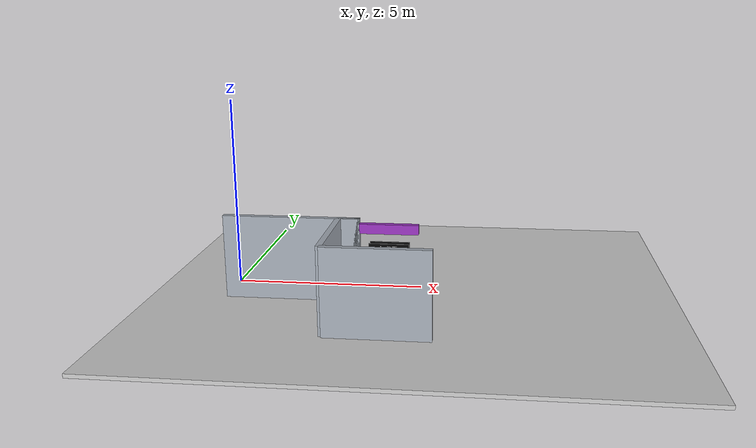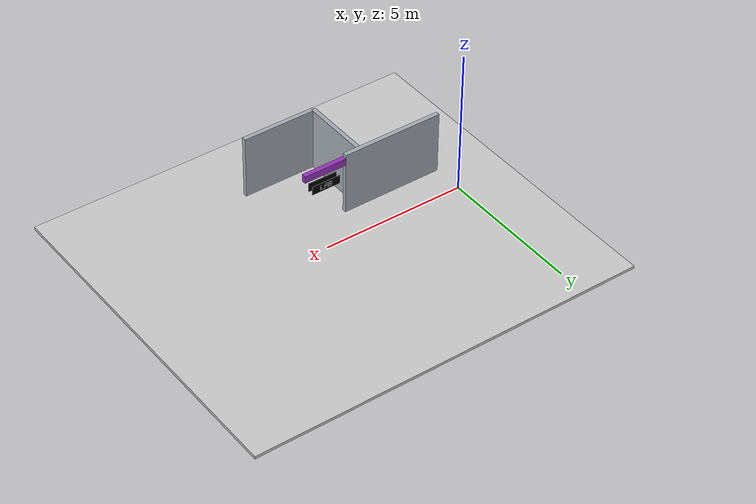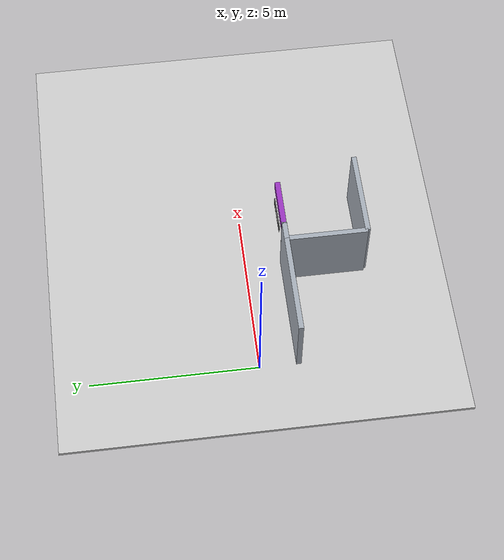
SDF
<sdf version="1.9">
 <world name="default">
  <model name="ground_plane">
   <static>true</static>
   <pose>4.85 0 -0.05 0 0 0</pose>
   <link name="body">
    <collision name="collision"><geometry><box><size>13.7 12 0.1</size></box></geometry></collision>
    <visual name="visual">
     <geometry><box><size>13.7 12 0.1</size></box></geometry>
     <material><ambient>0.8 0.8 0.8 1</ambient><diffuse>0.8 0.8 0.8 1</diffuse></material>
    </visual>
   </link>
  </model>
  <model name="hall_-1_1">
   <static>true</static>
   <pose>1.775 -1.15 1.1 0 0 0</pose>
   <link name="body">
    <collision name="collision"><geometry><box><size>3.55 0.15 2.2</size></box></geometry></collision>
    <visual name="visual">
     <geometry><box><size>3.55 0.15 2.2</size></box></geometry>
     <material><ambient>0.65 0.68 0.72 1</ambient><diffuse>0.65 0.68 0.72 1</diffuse></material>
    </visual>
   </link>
  </model>
  <model name="room_-1_1_-1">
   <static>true</static>
   <pose>3.0 -2.3499999999999996 1.1 0 0 0</pose>
   <link name="body">
    <collision name="collision"><geometry><box><size>0.15 2.4 2.2</size></box></geometry></collision>
    <visual name="visual">
     <geometry><box><size>0.15 2.4 2.2</size></box></geometry>
     <material><ambient>0.65 0.68 0.72 1</ambient><diffuse>0.65 0.68 0.72 1</diffuse></material>
    </visual>
   </link>
  </model>
  <model name="room_end_-1_1">
   <static>true</static>
   <pose>4.3 -3.55 1.1 0 0 0</pose>
   <link name="body">
    <collision name="collision"><geometry><box><size>2.6 0.15 2.2</size></box></geometry></collision>
    <visual name="visual">
     <geometry><box><size>2.6 0.15 2.2</size></box></geometry>
     <material><ambient>0.65 0.68 0.72 1</ambient><diffuse>0.65 0.68 0.72 1</diffuse></material>
    </visual>
   </link>
  </model>
  <model name="jamb_-1_1_-1">
   <static>true</static>
   <pose>3.275 -1.15 1.1 0 0 0</pose>
   <link name="body">
    <collision name="collision"><geometry><box><size>0.55 0.15 2.2</size></box></geometry></collision>
    <visual name="visual">
     <geometry><box><size>0.55 0.15 2.2</size></box></geometry>
     <material><ambient>0.65 0.68 0.72 1</ambient><diffuse>0.65 0.68 0.72 1</diffuse></material>
    </visual>
   </link>
  </model>
  <model name="r3geo_base_r006_right_1_lintel">
   <static>true</static>
   <pose>4.3 -1.15 1.95 0 0 0</pose>
   <link name="body">
    <collision name="collision"><geometry><box><size>1.5 0.16 0.25</size></box></geometry></collision>
    <visual name="visual">
     <geometry><box><size>1.5 0.16 0.25</size></box></geometry>
     <material><ambient>0.6 0.2 0.75 1</ambient><diffuse>0.6 0.2 0.75 1</diffuse></material>
    </visual>
   </link>
  </model>
  <model name="readable_r3geo_base_r006_right_1_entrance_corridor">
   <static>true</static>
   <pose>4.3 -1.05 1.43 0 0 3.14159265359</pose>
   <link name="lettering">
    <visual name="backboard">
     <geometry><box><size>1.02 0.018 0.3</size></box></geometry>
     <material>
      <ambient>.015 .015 .015 1</ambient>
      <diffuse>.015 .015 .015 1</diffuse>
      <emissive>.015 .015 .015 1</emissive>
     </material>
     <cast_shadows>false</cast_shadows>
    </visual>
    <visual name="letter_0_0_0">
     <pose>-0.208 -0.014 0.078 0 0 0</pose>
     <geometry><box><size>0.024439999999999996 0.008 0.024439999999999996</size></box></geometry>
     <material>
      <ambient>.96 .96 .96 1</ambient>
      <diffuse>.96 .96 .96 1</diffuse>
      <emissive>.96 .96 .96 1</emissive>
     </material>
     <cast_shadows>false</cast_shadows>
    </visual>
    <visual name="letter_0_1_0">
     <pose>-0.208 -0.014 0.052 0 0 0</pose>
     <geometry><box><size>0.024439999999999996 0.008 0.024439999999999996</size></box></geometry>
     <material>
      <ambient>.96 .96 .96 1</ambient>
      <diffuse>.96 .96 .96 1</diffuse>
      <emissive>.96 .96 .96 1</emissive>
     </material>
     <cast_shadows>false</cast_shadows>
    </visual>
    <visual name="letter_0_2_0">
     <pose>-0.208 -0.014 0.026 0 0 0</pose>
     <geometry><box><size>0.024439999999999996 0.008 0.024439999999999996</size></box></geometry>
     <material>
      <ambient>.96 .96 .96 1</ambient>
      <diffuse>.96 .96 .96 1</diffuse>
      <emissive>.96 .96 .96 1</emissive>
     </material>
     <cast_shadows>false</cast_shadows>
    </visual>
    <visual name="letter_0_3_0">
     <pose>-0.208 -0.014 0 0 0 0</pose>
     <geometry><box><size>0.024439999999999996 0.008 0.024439999999999996</size></box></geometry>
     <material>
      <ambient>.96 .96 .96 1</ambient>
      <diffuse>.96 .96 .96 1</diffuse>
      <emissive>.96 .96 .96 1</emissive>
     </material>
     <cast_shadows>false</cast_shadows>
    </visual>
    <visual name="letter_0_4_0">
     <pose>-0.208 -0.014 -0.026 0 0 0</pose>
     <geometry><box><size>0.024439999999999996 0.008 0.024439999999999996</size></box></geometry>
     <material>
      <ambient>.96 .96 .96 1</ambient>
      <diffuse>.96 .96 .96 1</diffuse>
      <emissive>.96 .96 .96 1</emissive>
     </material>
     <cast_shadows>false</cast_shadows>
    </visual>
    <visual name="letter_0_5_0">
     <pose>-0.208 -0.014 -0.052 0 0 0</pose>
     <geometry><box><size>0.024439999999999996 0.008 0.024439999999999996</size></box></geometry>
     <material>
      <ambient>.96 .96 .96 1</ambient>
      <diffuse>.96 .96 .96 1</diffuse>
      <emissive>.96 .96 .96 1</emissive>
     </material>
     <cast_shadows>false</cast_shadows>
    </visual>
    <visual name="letter_0_6_0">
     <pose>-0.208 -0.014 -0.078 0 0 0</pose>
     <geometry><box><size>0.024439999999999996 0.008 0.024439999999999996</size></box></geometry>
     <material>
      <ambient>.96 .96 .96 1</ambient>
      <diffuse>.96 .96 .96 1</diffuse>
      <emissive>.96 .96 .96 1</emissive>
     </material>
     <cast_shadows>false</cast_shadows>
    </visual>
    <visual name="letter_0_6_1">
     <pose>-0.182 -0.014 -0.078 0 0 0</pose>
     <geometry><box><size>0.024439999999999996 0.008 0.024439999999999996</size></box></geometry>
     <material>
      <ambient>.96 .96 .96 1</ambient>
      <diffuse>.96 .96 .96 1</diffuse>
      <emissive>.96 .96 .96 1</emissive>
     </material>
     <cast_shadows>false</cast_shadows>
    </visual>
    <visual name="letter_0_6_2">
     <pose>-0.156 -0.014 -0.078 0 0 0</pose>
     <geometry><box><size>0.024439999999999996 0.008 0.024439999999999996</size></box></geometry>
     <material>
      <ambient>.96 .96 .96 1</ambient>
      <diffuse>.96 .96 .96 1</diffuse>
      <emissive>.96 .96 .96 1</emissive>
     </material>
     <cast_shadows>false</cast_shadows>
    </visual>
    <visual name="letter_0_6_3">
     <pose>-0.13 -0.014 -0.078 0 0 0</pose>
     <geometry><box><size>0.024439999999999996 0.008 0.024439999999999996</size></box></geometry>
     <material>
      <ambient>.96 .96 .96 1</ambient>
      <diffuse>.96 .96 .96 1</diffuse>
      <emissive>.96 .96 .96 1</emissive>
     </material>
     <cast_shadows>false</cast_shadows>
    </visual>
    <visual name="letter_0_6_4">
     <pose>-0.104 -0.014 -0.078 0 0 0</pose>
     <geometry><box><size>0.024439999999999996 0.008 0.024439999999999996</size></box></geometry>
     <material>
      <ambient>.96 .96 .96 1</ambient>
      <diffuse>.96 .96 .96 1</diffuse>
      <emissive>.96 .96 .96 1</emissive>
     </material>
     <cast_shadows>false</cast_shadows>
    </visual>
    <visual name="letter_1_0_1">
     <pose>-0.026 -0.014 0.078 0 0 0</pose>
     <geometry><box><size>0.024439999999999996 0.008 0.024439999999999996</size></box></geometry>
     <material>
      <ambient>.96 .96 .96 1</ambient>
      <diffuse>.96 .96 .96 1</diffuse>
      <emissive>.96 .96 .96 1</emissive>
     </material>
     <cast_shadows>false</cast_shadows>
    </visual>
    <visual name="letter_1_0_2">
     <pose>0 -0.014 0.078 0 0 0</pose>
     <geometry><box><size>0.024439999999999996 0.008 0.024439999999999996</size></box></geometry>
     <material>
      <ambient>.96 .96 .96 1</ambient>
      <diffuse>.96 .96 .96 1</diffuse>
      <emissive>.96 .96 .96 1</emissive>
     </material>
     <cast_shadows>false</cast_shadows>
    </visual>
    <visual name="letter_1_0_3">
     <pose>0.026 -0.014 0.078 0 0 0</pose>
     <geometry><box><size>0.024439999999999996 0.008 0.024439999999999996</size></box></geometry>
     <material>
      <ambient>.96 .96 .96 1</ambient>
      <diffuse>.96 .96 .96 1</diffuse>
      <emissive>.96 .96 .96 1</emissive>
     </material>
     <cast_shadows>false</cast_shadows>
    </visual>
    <visual name="letter_1_1_0">
     <pose>-0.052 -0.014 0.052 0 0 0</pose>
     <geometry><box><size>0.024439999999999996 0.008 0.024439999999999996</size></box></geometry>
     <material>
      <ambient>.96 .96 .96 1</ambient>
      <diffuse>.96 .96 .96 1</diffuse>
      <emissive>.96 .96 .96 1</emissive>
     </material>
     <cast_shadows>false</cast_shadows>
    </visual>
    <visual name="letter_1_1_4">
     <pose>0.052 -0.014 0.052 0 0 0</pose>
     <geometry><box><size>0.024439999999999996 0.008 0.024439999999999996</size></box></geometry>
     <material>
      <ambient>.96 .96 .96 1</ambient>
      <diffuse>.96 .96 .96 1</diffuse>
      <emissive>.96 .96 .96 1</emissive>
     </material>
     <cast_shadows>false</cast_shadows>
    </visual>
    <visual name="letter_1_2_0">
     <pose>-0.052 -0.014 0.026 0 0 0</pose>
     <geometry><box><size>0.024439999999999996 0.008 0.024439999999999996</size></box></geometry>
     <material>
      <ambient>.96 .96 .96 1</ambient>
      <diffuse>.96 .96 .96 1</diffuse>
      <emissive>.96 .96 .96 1</emissive>
     </material>
     <cast_shadows>false</cast_shadows>
    </visual>
    <visual name="letter_1_2_4">
     <pose>0.052 -0.014 0.026 0 0 0</pose>
     <geometry><box><size>0.024439999999999996 0.008 0.024439999999999996</size></box></geometry>
     <material>
      <ambient>.96 .96 .96 1</ambient>
      <diffuse>.96 .96 .96 1</diffuse>
      <emissive>.96 .96 .96 1</emissive>
     </material>
     <cast_shadows>false</cast_shadows>
    </visual>
    <visual name="letter_1_3_0">
     <pose>-0.052 -0.014 0 0 0 0</pose>
     <geometry><box><size>0.024439999999999996 0.008 0.024439999999999996</size></box></geometry>
     <material>
      <ambient>.96 .96 .96 1</ambient>
      <diffuse>.96 .96 .96 1</diffuse>
      <emissive>.96 .96 .96 1</emissive>
     </material>
     <cast_shadows>false</cast_shadows>
    </visual>
    <visual name="letter_1_3_1">
     <pose>-0.026 -0.014 0 0 0 0</pose>
     <geometry><box><size>0.024439999999999996 0.008 0.024439999999999996</size></box></geometry>
     <material>
      <ambient>.96 .96 .96 1</ambient>
      <diffuse>.96 .96 .96 1</diffuse>
      <emissive>.96 .96 .96 1</emissive>
     </material>
     <cast_shadows>false</cast_shadows>
    </visual>
    <visual name="letter_1_3_2">
     <pose>0 -0.014 0 0 0 0</pose>
     <geometry><box><size>0.024439999999999996 0.008 0.024439999999999996</size></box></geometry>
     <material>
      <ambient>.96 .96 .96 1</ambient>
      <diffuse>.96 .96 .96 1</diffuse>
      <emissive>.96 .96 .96 1</emissive>
     </material>
     <cast_shadows>false</cast_shadows>
    </visual>
    <visual name="letter_1_3_3">
     <pose>0.026 -0.014 0 0 0 0</pose>
     <geometry><box><size>0.024439999999999996 0.008 0.024439999999999996</size></box></geometry>
     <material>
      <ambient>.96 .96 .96 1</ambient>
      <diffuse>.96 .96 .96 1</diffuse>
      <emissive>.96 .96 .96 1</emissive>
     </material>
     <cast_shadows>false</cast_shadows>
    </visual>
    <visual name="letter_1_3_4">
     <pose>0.052 -0.014 0 0 0 0</pose>
     <geometry><box><size>0.024439999999999996 0.008 0.024439999999999996</size></box></geometry>
     <material>
      <ambient>.96 .96 .96 1</ambient>
      <diffuse>.96 .96 .96 1</diffuse>
      <emissive>.96 .96 .96 1</emissive>
     </material>
     <cast_shadows>false</cast_shadows>
    </visual>
    <visual name="letter_1_4_0">
     <pose>-0.052 -0.014 -0.026 0 0 0</pose>
     <geometry><box><size>0.024439999999999996 0.008 0.024439999999999996</size></box></geometry>
     <material>
      <ambient>.96 .96 .96 1</ambient>
      <diffuse>.96 .96 .96 1</diffuse>
      <emissive>.96 .96 .96 1</emissive>
     </material>
     <cast_shadows>false</cast_shadows>
    </visual>
    <visual name="letter_1_4_4">
     <pose>0.052 -0.014 -0.026 0 0 0</pose>
     <geometry><box><size>0.024439999999999996 0.008 0.024439999999999996</size></box></geometry>
     <material>
      <ambient>.96 .96 .96 1</ambient>
      <diffuse>.96 .96 .96 1</diffuse>
      <emissive>.96 .96 .96 1</emissive>
     </material>
     <cast_shadows>false</cast_shadows>
    </visual>
    <visual name="letter_1_5_0">
     <pose>-0.052 -0.014 -0.052 0 0 0</pose>
     <geometry><box><size>0.024439999999999996 0.008 0.024439999999999996</size></box></geometry>
     <material>
      <ambient>.96 .96 .96 1</ambient>
      <diffuse>.96 .96 .96 1</diffuse>
      <emissive>.96 .96 .96 1</emissive>
     </material>
     <cast_shadows>false</cast_shadows>
    </visual>
    <visual name="letter_1_5_4">
     <pose>0.052 -0.014 -0.052 0 0 0</pose>
     <geometry><box><size>0.024439999999999996 0.008 0.024439999999999996</size></box></geometry>
     <material>
      <ambient>.96 .96 .96 1</ambient>
      <diffuse>.96 .96 .96 1</diffuse>
      <emissive>.96 .96 .96 1</emissive>
     </material>
     <cast_shadows>false</cast_shadows>
    </visual>
    <visual name="letter_1_6_0">
     <pose>-0.052 -0.014 -0.078 0 0 0</pose>
     <geometry><box><size>0.024439999999999996 0.008 0.024439999999999996</size></box></geometry>
     <material>
      <ambient>.96 .96 .96 1</ambient>
      <diffuse>.96 .96 .96 1</diffuse>
      <emissive>.96 .96 .96 1</emissive>
     </material>
     <cast_shadows>false</cast_shadows>
    </visual>
    <visual name="letter_1_6_4">
     <pose>0.052 -0.014 -0.078 0 0 0</pose>
     <geometry><box><size>0.024439999999999996 0.008 0.024439999999999996</size></box></geometry>
     <material>
      <ambient>.96 .96 .96 1</ambient>
      <diffuse>.96 .96 .96 1</diffuse>
      <emissive>.96 .96 .96 1</emissive>
     </material>
     <cast_shadows>false</cast_shadows>
    </visual>
    <visual name="letter_2_0_0">
     <pose>0.104 -0.014 0.078 0 0 0</pose>
     <geometry><box><size>0.024439999999999996 0.008 0.024439999999999996</size></box></geometry>
     <material>
      <ambient>.96 .96 .96 1</ambient>
      <diffuse>.96 .96 .96 1</diffuse>
      <emissive>.96 .96 .96 1</emissive>
     </material>
     <cast_shadows>false</cast_shadows>
    </visual>
    <visual name="letter_2_0_1">
     <pose>0.13 -0.014 0.078 0 0 0</pose>
     <geometry><box><size>0.024439999999999996 0.008 0.024439999999999996</size></box></geometry>
     <material>
      <ambient>.96 .96 .96 1</ambient>
      <diffuse>.96 .96 .96 1</diffuse>
      <emissive>.96 .96 .96 1</emissive>
     </material>
     <cast_shadows>false</cast_shadows>
    </visual>
    <visual name="letter_2_0_2">
     <pose>0.156 -0.014 0.078 0 0 0</pose>
     <geometry><box><size>0.024439999999999996 0.008 0.024439999999999996</size></box></geometry>
     <material>
      <ambient>.96 .96 .96 1</ambient>
      <diffuse>.96 .96 .96 1</diffuse>
      <emissive>.96 .96 .96 1</emissive>
     </material>
     <cast_shadows>false</cast_shadows>
    </visual>
    <visual name="letter_2_0_3">
     <pose>0.182 -0.014 0.078 0 0 0</pose>
     <geometry><box><size>0.024439999999999996 0.008 0.024439999999999996</size></box></geometry>
     <material>
      <ambient>.96 .96 .96 1</ambient>
      <diffuse>.96 .96 .96 1</diffuse>
      <emissive>.96 .96 .96 1</emissive>
     </material>
     <cast_shadows>false</cast_shadows>
    </visual>
    <visual name="letter_2_1_0">
     <pose>0.104 -0.014 0.052 0 0 0</pose>
     <geometry><box><size>0.024439999999999996 0.008 0.024439999999999996</size></box></geometry>
     <material>
      <ambient>.96 .96 .96 1</ambient>
      <diffuse>.96 .96 .96 1</diffuse>
      <emissive>.96 .96 .96 1</emissive>
     </material>
     <cast_shadows>false</cast_shadows>
    </visual>
    <visual name="letter_2_1_4">
     <pose>0.208 -0.014 0.052 0 0 0</pose>
     <geometry><box><size>0.024439999999999996 0.008 0.024439999999999996</size></box></geometry>
     <material>
      <ambient>.96 .96 .96 1</ambient>
      <diffuse>.96 .96 .96 1</diffuse>
      <emissive>.96 .96 .96 1</emissive>
     </material>
     <cast_shadows>false</cast_shadows>
    </visual>
    <visual name="letter_2_2_0">
     <pose>0.104 -0.014 0.026 0 0 0</pose>
     <geometry><box><size>0.024439999999999996 0.008 0.024439999999999996</size></box></geometry>
     <material>
      <ambient>.96 .96 .96 1</ambient>
      <diffuse>.96 .96 .96 1</diffuse>
      <emissive>.96 .96 .96 1</emissive>
     </material>
     <cast_shadows>false</cast_shadows>
    </visual>
    <visual name="letter_2_2_4">
     <pose>0.208 -0.014 0.026 0 0 0</pose>
     <geometry><box><size>0.024439999999999996 0.008 0.024439999999999996</size></box></geometry>
     <material>
      <ambient>.96 .96 .96 1</ambient>
      <diffuse>.96 .96 .96 1</diffuse>
      <emissive>.96 .96 .96 1</emissive>
     </material>
     <cast_shadows>false</cast_shadows>
    </visual>
    <visual name="letter_2_3_0">
     <pose>0.104 -0.014 0 0 0 0</pose>
     <geometry><box><size>0.024439999999999996 0.008 0.024439999999999996</size></box></geometry>
     <material>
      <ambient>.96 .96 .96 1</ambient>
      <diffuse>.96 .96 .96 1</diffuse>
      <emissive>.96 .96 .96 1</emissive>
     </material>
     <cast_shadows>false</cast_shadows>
    </visual>
    <visual name="letter_2_3_1">
     <pose>0.13 -0.014 0 0 0 0</pose>
     <geometry><box><size>0.024439999999999996 0.008 0.024439999999999996</size></box></geometry>
     <material>
      <ambient>.96 .96 .96 1</ambient>
      <diffuse>.96 .96 .96 1</diffuse>
      <emissive>.96 .96 .96 1</emissive>
     </material>
     <cast_shadows>false</cast_shadows>
    </visual>
    <visual name="letter_2_3_2">
     <pose>0.156 -0.014 0 0 0 0</pose>
     <geometry><box><size>0.024439999999999996 0.008 0.024439999999999996</size></box></geometry>
     <material>
      <ambient>.96 .96 .96 1</ambient>
      <diffuse>.96 .96 .96 1</diffuse>
      <emissive>.96 .96 .96 1</emissive>
     </material>
     <cast_shadows>false</cast_shadows>
    </visual>
    <visual name="letter_2_3_3">
     <pose>0.182 -0.014 0 0 0 0</pose>
     <geometry><box><size>0.024439999999999996 0.008 0.024439999999999996</size></box></geometry>
     <material>
      <ambient>.96 .96 .96 1</ambient>
      <diffuse>.96 .96 .96 1</diffuse>
      <emissive>.96 .96 .96 1</emissive>
     </material>
     <cast_shadows>false</cast_shadows>
    </visual>
    <visual name="letter_2_4_0">
     <pose>0.104 -0.014 -0.026 0 0 0</pose>
     <geometry><box><size>0.024439999999999996 0.008 0.024439999999999996</size></box></geometry>
     <material>
      <ambient>.96 .96 .96 1</ambient>
      <diffuse>.96 .96 .96 1</diffuse>
      <emissive>.96 .96 .96 1</emissive>
     </material>
     <cast_shadows>false</cast_shadows>
    </visual>
    <visual name="letter_2_4_4">
     <pose>0.208 -0.014 -0.026 0 0 0</pose>
     <geometry><box><size>0.024439999999999996 0.008 0.024439999999999996</size></box></geometry>
     <material>
      <ambient>.96 .96 .96 1</ambient>
      <diffuse>.96 .96 .96 1</diffuse>
      <emissive>.96 .96 .96 1</emissive>
     </material>
     <cast_shadows>false</cast_shadows>
    </visual>
    <visual name="letter_2_5_0">
     <pose>0.104 -0.014 -0.052 0 0 0</pose>
     <geometry><box><size>0.024439999999999996 0.008 0.024439999999999996</size></box></geometry>
     <material>
      <ambient>.96 .96 .96 1</ambient>
      <diffuse>.96 .96 .96 1</diffuse>
      <emissive>.96 .96 .96 1</emissive>
     </material>
     <cast_shadows>false</cast_shadows>
    </visual>
    <visual name="letter_2_5_4">
     <pose>0.208 -0.014 -0.052 0 0 0</pose>
     <geometry><box><size>0.024439999999999996 0.008 0.024439999999999996</size></box></geometry>
     <material>
      <ambient>.96 .96 .96 1</ambient>
      <diffuse>.96 .96 .96 1</diffuse>
      <emissive>.96 .96 .96 1</emissive>
     </material>
     <cast_shadows>false</cast_shadows>
    </visual>
    <visual name="letter_2_6_0">
     <pose>0.104 -0.014 -0.078 0 0 0</pose>
     <geometry><box><size>0.024439999999999996 0.008 0.024439999999999996</size></box></geometry>
     <material>
      <ambient>.96 .96 .96 1</ambient>
      <diffuse>.96 .96 .96 1</diffuse>
      <emissive>.96 .96 .96 1</emissive>
     </material>
     <cast_shadows>false</cast_shadows>
    </visual>
    <visual name="letter_2_6_1">
     <pose>0.13 -0.014 -0.078 0 0 0</pose>
     <geometry><box><size>0.024439999999999996 0.008 0.024439999999999996</size></box></geometry>
     <material>
      <ambient>.96 .96 .96 1</ambient>
      <diffuse>.96 .96 .96 1</diffuse>
      <emissive>.96 .96 .96 1</emissive>
     </material>
     <cast_shadows>false</cast_shadows>
    </visual>
    <visual name="letter_2_6_2">
     <pose>0.156 -0.014 -0.078 0 0 0</pose>
     <geometry><box><size>0.024439999999999996 0.008 0.024439999999999996</size></box></geometry>
     <material>
      <ambient>.96 .96 .96 1</ambient>
      <diffuse>.96 .96 .96 1</diffuse>
      <emissive>.96 .96 .96 1</emissive>
     </material>
     <cast_shadows>false</cast_shadows>
    </visual>
    <visual name="letter_2_6_3">
     <pose>0.182 -0.014 -0.078 0 0 0</pose>
     <geometry><box><size>0.024439999999999996 0.008 0.024439999999999996</size></box></geometry>
     <material>
      <ambient>.96 .96 .96 1</ambient>
      <diffuse>.96 .96 .96 1</diffuse>
      <emissive>.96 .96 .96 1</emissive>
     </material>
     <cast_shadows>false</cast_shadows>
    </visual>
   </link>
  </model>
  <model name="readable_r3geo_base_r006_right_1_entrance_room">
   <static>true</static>
   <pose>4.3 -1.25 1.43 0 0 0</pose>
   <link name="lettering">
    <visual name="backboard">
     <geometry><box><size>1.02 0.018 0.3</size></box></geometry>
     <material>
      <ambient>.015 .015 .015 1</ambient>
      <diffuse>.015 .015 .015 1</diffuse>
      <emissive>.015 .015 .015 1</emissive>
     </material>
     <cast_shadows>false</cast_shadows>
    </visual>
    <visual name="letter_0_0_0">
     <pose>-0.208 -0.014 0.078 0 0 0</pose>
     <geometry><box><size>0.024439999999999996 0.008 0.024439999999999996</size></box></geometry>
     <material>
      <ambient>.96 .96 .96 1</ambient>
      <diffuse>.96 .96 .96 1</diffuse>
      <emissive>.96 .96 .96 1</emissive>
     </material>
     <cast_shadows>false</cast_shadows>
    </visual>
    <visual name="letter_0_1_0">
     <pose>-0.208 -0.014 0.052 0 0 0</pose>
     <geometry><box><size>0.024439999999999996 0.008 0.024439999999999996</size></box></geometry>
     <material>
      <ambient>.96 .96 .96 1</ambient>
      <diffuse>.96 .96 .96 1</diffuse>
      <emissive>.96 .96 .96 1</emissive>
     </material>
     <cast_shadows>false</cast_shadows>
    </visual>
    <visual name="letter_0_2_0">
     <pose>-0.208 -0.014 0.026 0 0 0</pose>
     <geometry><box><size>0.024439999999999996 0.008 0.024439999999999996</size></box></geometry>
     <material>
      <ambient>.96 .96 .96 1</ambient>
      <diffuse>.96 .96 .96 1</diffuse>
      <emissive>.96 .96 .96 1</emissive>
     </material>
     <cast_shadows>false</cast_shadows>
    </visual>
    <visual name="letter_0_3_0">
     <pose>-0.208 -0.014 0 0 0 0</pose>
     <geometry><box><size>0.024439999999999996 0.008 0.024439999999999996</size></box></geometry>
     <material>
      <ambient>.96 .96 .96 1</ambient>
      <diffuse>.96 .96 .96 1</diffuse>
      <emissive>.96 .96 .96 1</emissive>
     </material>
     <cast_shadows>false</cast_shadows>
    </visual>
    <visual name="letter_0_4_0">
     <pose>-0.208 -0.014 -0.026 0 0 0</pose>
     <geometry><box><size>0.024439999999999996 0.008 0.024439999999999996</size></box></geometry>
     <material>
      <ambient>.96 .96 .96 1</ambient>
      <diffuse>.96 .96 .96 1</diffuse>
      <emissive>.96 .96 .96 1</emissive>
     </material>
     <cast_shadows>false</cast_shadows>
    </visual>
    <visual name="letter_0_5_0">
     <pose>-0.208 -0.014 -0.052 0 0 0</pose>
     <geometry><box><size>0.024439999999999996 0.008 0.024439999999999996</size></box></geometry>
     <material>
      <ambient>.96 .96 .96 1</ambient>
      <diffuse>.96 .96 .96 1</diffuse>
      <emissive>.96 .96 .96 1</emissive>
     </material>
     <cast_shadows>false</cast_shadows>
    </visual>
    <visual name="letter_0_6_0">
     <pose>-0.208 -0.014 -0.078 0 0 0</pose>
     <geometry><box><size>0.024439999999999996 0.008 0.024439999999999996</size></box></geometry>
     <material>
      <ambient>.96 .96 .96 1</ambient>
      <diffuse>.96 .96 .96 1</diffuse>
      <emissive>.96 .96 .96 1</emissive>
     </material>
     <cast_shadows>false</cast_shadows>
    </visual>
    <visual name="letter_0_6_1">
     <pose>-0.182 -0.014 -0.078 0 0 0</pose>
     <geometry><box><size>0.024439999999999996 0.008 0.024439999999999996</size></box></geometry>
     <material>
      <ambient>.96 .96 .96 1</ambient>
      <diffuse>.96 .96 .96 1</diffuse>
      <emissive>.96 .96 .96 1</emissive>
     </material>
     <cast_shadows>false</cast_shadows>
    </visual>
    <visual name="letter_0_6_2">
     <pose>-0.156 -0.014 -0.078 0 0 0</pose>
     <geometry><box><size>0.024439999999999996 0.008 0.024439999999999996</size></box></geometry>
     <material>
      <ambient>.96 .96 .96 1</ambient>
      <diffuse>.96 .96 .96 1</diffuse>
      <emissive>.96 .96 .96 1</emissive>
     </material>
     <cast_shadows>false</cast_shadows>
    </visual>
    <visual name="letter_0_6_3">
     <pose>-0.13 -0.014 -0.078 0 0 0</pose>
     <geometry><box><size>0.024439999999999996 0.008 0.024439999999999996</size></box></geometry>
     <material>
      <ambient>.96 .96 .96 1</ambient>
      <diffuse>.96 .96 .96 1</diffuse>
      <emissive>.96 .96 .96 1</emissive>
     </material>
     <cast_shadows>false</cast_shadows>
    </visual>
    <visual name="letter_0_6_4">
     <pose>-0.104 -0.014 -0.078 0 0 0</pose>
     <geometry><box><size>0.024439999999999996 0.008 0.024439999999999996</size></box></geometry>
     <material>
      <ambient>.96 .96 .96 1</ambient>
      <diffuse>.96 .96 .96 1</diffuse>
      <emissive>.96 .96 .96 1</emissive>
     </material>
     <cast_shadows>false</cast_shadows>
    </visual>
    <visual name="letter_1_0_1">
     <pose>-0.026 -0.014 0.078 0 0 0</pose>
     <geometry><box><size>0.024439999999999996 0.008 0.024439999999999996</size></box></geometry>
     <material>
      <ambient>.96 .96 .96 1</ambient>
      <diffuse>.96 .96 .96 1</diffuse>
      <emissive>.96 .96 .96 1</emissive>
     </material>
     <cast_shadows>false</cast_shadows>
    </visual>
    <visual name="letter_1_0_2">
     <pose>0 -0.014 0.078 0 0 0</pose>
     <geometry><box><size>0.024439999999999996 0.008 0.024439999999999996</size></box></geometry>
     <material>
      <ambient>.96 .96 .96 1</ambient>
      <diffuse>.96 .96 .96 1</diffuse>
      <emissive>.96 .96 .96 1</emissive>
     </material>
     <cast_shadows>false</cast_shadows>
    </visual>
    <visual name="letter_1_0_3">
     <pose>0.026 -0.014 0.078 0 0 0</pose>
     <geometry><box><size>0.024439999999999996 0.008 0.024439999999999996</size></box></geometry>
     <material>
      <ambient>.96 .96 .96 1</ambient>
      <diffuse>.96 .96 .96 1</diffuse>
      <emissive>.96 .96 .96 1</emissive>
     </material>
     <cast_shadows>false</cast_shadows>
    </visual>
    <visual name="letter_1_1_0">
     <pose>-0.052 -0.014 0.052 0 0 0</pose>
     <geometry><box><size>0.024439999999999996 0.008 0.024439999999999996</size></box></geometry>
     <material>
      <ambient>.96 .96 .96 1</ambient>
      <diffuse>.96 .96 .96 1</diffuse>
      <emissive>.96 .96 .96 1</emissive>
     </material>
     <cast_shadows>false</cast_shadows>
    </visual>
    <visual name="letter_1_1_4">
     <pose>0.052 -0.014 0.052 0 0 0</pose>
     <geometry><box><size>0.024439999999999996 0.008 0.024439999999999996</size></box></geometry>
     <material>
      <ambient>.96 .96 .96 1</ambient>
      <diffuse>.96 .96 .96 1</diffuse>
      <emissive>.96 .96 .96 1</emissive>
     </material>
     <cast_shadows>false</cast_shadows>
    </visual>
    <visual name="letter_1_2_0">
     <pose>-0.052 -0.014 0.026 0 0 0</pose>
     <geometry><box><size>0.024439999999999996 0.008 0.024439999999999996</size></box></geometry>
     <material>
      <ambient>.96 .96 .96 1</ambient>
      <diffuse>.96 .96 .96 1</diffuse>
      <emissive>.96 .96 .96 1</emissive>
     </material>
     <cast_shadows>false</cast_shadows>
    </visual>
    <visual name="letter_1_2_4">
     <pose>0.052 -0.014 0.026 0 0 0</pose>
     <geometry><box><size>0.024439999999999996 0.008 0.024439999999999996</size></box></geometry>
     <material>
      <ambient>.96 .96 .96 1</ambient>
      <diffuse>.96 .96 .96 1</diffuse>
      <emissive>.96 .96 .96 1</emissive>
     </material>
     <cast_shadows>false</cast_shadows>
    </visual>
    <visual name="letter_1_3_0">
     <pose>-0.052 -0.014 0 0 0 0</pose>
     <geometry><box><size>0.024439999999999996 0.008 0.024439999999999996</size></box></geometry>
     <material>
      <ambient>.96 .96 .96 1</ambient>
      <diffuse>.96 .96 .96 1</diffuse>
      <emissive>.96 .96 .96 1</emissive>
     </material>
     <cast_shadows>false</cast_shadows>
    </visual>
    <visual name="letter_1_3_1">
     <pose>-0.026 -0.014 0 0 0 0</pose>
     <geometry><box><size>0.024439999999999996 0.008 0.024439999999999996</size></box></geometry>
     <material>
      <ambient>.96 .96 .96 1</ambient>
      <diffuse>.96 .96 .96 1</diffuse>
      <emissive>.96 .96 .96 1</emissive>
     </material>
     <cast_shadows>false</cast_shadows>
    </visual>
    <visual name="letter_1_3_2">
     <pose>0 -0.014 0 0 0 0</pose>
     <geometry><box><size>0.024439999999999996 0.008 0.024439999999999996</size></box></geometry>
     <material>
      <ambient>.96 .96 .96 1</ambient>
      <diffuse>.96 .96 .96 1</diffuse>
      <emissive>.96 .96 .96 1</emissive>
     </material>
     <cast_shadows>false</cast_shadows>
    </visual>
    <visual name="letter_1_3_3">
     <pose>0.026 -0.014 0 0 0 0</pose>
     <geometry><box><size>0.024439999999999996 0.008 0.024439999999999996</size></box></geometry>
     <material>
      <ambient>.96 .96 .96 1</ambient>
      <diffuse>.96 .96 .96 1</diffuse>
      <emissive>.96 .96 .96 1</emissive>
     </material>
     <cast_shadows>false</cast_shadows>
    </visual>
    <visual name="letter_1_3_4">
     <pose>0.052 -0.014 0 0 0 0</pose>
     <geometry><box><size>0.024439999999999996 0.008 0.024439999999999996</size></box></geometry>
     <material>
      <ambient>.96 .96 .96 1</ambient>
      <diffuse>.96 .96 .96 1</diffuse>
      <emissive>.96 .96 .96 1</emissive>
     </material>
     <cast_shadows>false</cast_shadows>
    </visual>
    <visual name="letter_1_4_0">
     <pose>-0.052 -0.014 -0.026 0 0 0</pose>
     <geometry><box><size>0.024439999999999996 0.008 0.024439999999999996</size></box></geometry>
     <material>
      <ambient>.96 .96 .96 1</ambient>
      <diffuse>.96 .96 .96 1</diffuse>
      <emissive>.96 .96 .96 1</emissive>
     </material>
     <cast_shadows>false</cast_shadows>
    </visual>
    <visual name="letter_1_4_4">
     <pose>0.052 -0.014 -0.026 0 0 0</pose>
     <geometry><box><size>0.024439999999999996 0.008 0.024439999999999996</size></box></geometry>
     <material>
      <ambient>.96 .96 .96 1</ambient>
      <diffuse>.96 .96 .96 1</diffuse>
      <emissive>.96 .96 .96 1</emissive>
     </material>
     <cast_shadows>false</cast_shadows>
    </visual>
    <visual name="letter_1_5_0">
     <pose>-0.052 -0.014 -0.052 0 0 0</pose>
     <geometry><box><size>0.024439999999999996 0.008 0.024439999999999996</size></box></geometry>
     <material>
      <ambient>.96 .96 .96 1</ambient>
      <diffuse>.96 .96 .96 1</diffuse>
      <emissive>.96 .96 .96 1</emissive>
     </material>
     <cast_shadows>false</cast_shadows>
    </visual>
    <visual name="letter_1_5_4">
     <pose>0.052 -0.014 -0.052 0 0 0</pose>
     <geometry><box><size>0.024439999999999996 0.008 0.024439999999999996</size></box></geometry>
     <material>
      <ambient>.96 .96 .96 1</ambient>
      <diffuse>.96 .96 .96 1</diffuse>
      <emissive>.96 .96 .96 1</emissive>
     </material>
     <cast_shadows>false</cast_shadows>
    </visual>
    <visual name="letter_1_6_0">
     <pose>-0.052 -0.014 -0.078 0 0 0</pose>
     <geometry><box><size>0.024439999999999996 0.008 0.024439999999999996</size></box></geometry>
     <material>
      <ambient>.96 .96 .96 1</ambient>
      <diffuse>.96 .96 .96 1</diffuse>
      <emissive>.96 .96 .96 1</emissive>
     </material>
     <cast_shadows>false</cast_shadows>
    </visual>
    <visual name="letter_1_6_4">
     <pose>0.052 -0.014 -0.078 0 0 0</pose>
     <geometry><box><size>0.024439999999999996 0.008 0.024439999999999996</size></box></geometry>
     <material>
      <ambient>.96 .96 .96 1</ambient>
      <diffuse>.96 .96 .96 1</diffuse>
      <emissive>.96 .96 .96 1</emissive>
     </material>
     <cast_shadows>false</cast_shadows>
    </visual>
    <visual name="letter_2_0_0">
     <pose>0.104 -0.014 0.078 0 0 0</pose>
     <geometry><box><size>0.024439999999999996 0.008 0.024439999999999996</size></box></geometry>
     <material>
      <ambient>.96 .96 .96 1</ambient>
      <diffuse>.96 .96 .96 1</diffuse>
      <emissive>.96 .96 .96 1</emissive>
     </material>
     <cast_shadows>false</cast_shadows>
    </visual>
    <visual name="letter_2_0_1">
     <pose>0.13 -0.014 0.078 0 0 0</pose>
     <geometry><box><size>0.024439999999999996 0.008 0.024439999999999996</size></box></geometry>
     <material>
      <ambient>.96 .96 .96 1</ambient>
      <diffuse>.96 .96 .96 1</diffuse>
      <emissive>.96 .96 .96 1</emissive>
     </material>
     <cast_shadows>false</cast_shadows>
    </visual>
    <visual name="letter_2_0_2">
     <pose>0.156 -0.014 0.078 0 0 0</pose>
     <geometry><box><size>0.024439999999999996 0.008 0.024439999999999996</size></box></geometry>
     <material>
      <ambient>.96 .96 .96 1</ambient>
      <diffuse>.96 .96 .96 1</diffuse>
      <emissive>.96 .96 .96 1</emissive>
     </material>
     <cast_shadows>false</cast_shadows>
    </visual>
    <visual name="letter_2_0_3">
     <pose>0.182 -0.014 0.078 0 0 0</pose>
     <geometry><box><size>0.024439999999999996 0.008 0.024439999999999996</size></box></geometry>
     <material>
      <ambient>.96 .96 .96 1</ambient>
      <diffuse>.96 .96 .96 1</diffuse>
      <emissive>.96 .96 .96 1</emissive>
     </material>
     <cast_shadows>false</cast_shadows>
    </visual>
    <visual name="letter_2_1_0">
     <pose>0.104 -0.014 0.052 0 0 0</pose>
     <geometry><box><size>0.024439999999999996 0.008 0.024439999999999996</size></box></geometry>
     <material>
      <ambient>.96 .96 .96 1</ambient>
      <diffuse>.96 .96 .96 1</diffuse>
      <emissive>.96 .96 .96 1</emissive>
     </material>
     <cast_shadows>false</cast_shadows>
    </visual>
    <visual name="letter_2_1_4">
     <pose>0.208 -0.014 0.052 0 0 0</pose>
     <geometry><box><size>0.024439999999999996 0.008 0.024439999999999996</size></box></geometry>
     <material>
      <ambient>.96 .96 .96 1</ambient>
      <diffuse>.96 .96 .96 1</diffuse>
      <emissive>.96 .96 .96 1</emissive>
     </material>
     <cast_shadows>false</cast_shadows>
    </visual>
    <visual name="letter_2_2_0">
     <pose>0.104 -0.014 0.026 0 0 0</pose>
     <geometry><box><size>0.024439999999999996 0.008 0.024439999999999996</size></box></geometry>
     <material>
      <ambient>.96 .96 .96 1</ambient>
      <diffuse>.96 .96 .96 1</diffuse>
      <emissive>.96 .96 .96 1</emissive>
     </material>
     <cast_shadows>false</cast_shadows>
    </visual>
    <visual name="letter_2_2_4">
     <pose>0.208 -0.014 0.026 0 0 0</pose>
     <geometry><box><size>0.024439999999999996 0.008 0.024439999999999996</size></box></geometry>
     <material>
      <ambient>.96 .96 .96 1</ambient>
      <diffuse>.96 .96 .96 1</diffuse>
      <emissive>.96 .96 .96 1</emissive>
     </material>
     <cast_shadows>false</cast_shadows>
    </visual>
    <visual name="letter_2_3_0">
     <pose>0.104 -0.014 0 0 0 0</pose>
     <geometry><box><size>0.024439999999999996 0.008 0.024439999999999996</size></box></geometry>
     <material>
      <ambient>.96 .96 .96 1</ambient>
      <diffuse>.96 .96 .96 1</diffuse>
      <emissive>.96 .96 .96 1</emissive>
     </material>
     <cast_shadows>false</cast_shadows>
    </visual>
    <visual name="letter_2_3_1">
     <pose>0.13 -0.014 0 0 0 0</pose>
     <geometry><box><size>0.024439999999999996 0.008 0.024439999999999996</size></box></geometry>
     <material>
      <ambient>.96 .96 .96 1</ambient>
      <diffuse>.96 .96 .96 1</diffuse>
      <emissive>.96 .96 .96 1</emissive>
     </material>
     <cast_shadows>false</cast_shadows>
    </visual>
    <visual name="letter_2_3_2">
     <pose>0.156 -0.014 0 0 0 0</pose>
     <geometry><box><size>0.024439999999999996 0.008 0.024439999999999996</size></box></geometry>
     <material>
      <ambient>.96 .96 .96 1</ambient>
      <diffuse>.96 .96 .96 1</diffuse>
      <emissive>.96 .96 .96 1</emissive>
     </material>
     <cast_shadows>false</cast_shadows>
    </visual>
    <visual name="letter_2_3_3">
     <pose>0.182 -0.014 0 0 0 0</pose>
     <geometry><box><size>0.024439999999999996 0.008 0.024439999999999996</size></box></geometry>
     <material>
      <ambient>.96 .96 .96 1</ambient>
      <diffuse>.96 .96 .96 1</diffuse>
      <emissive>.96 .96 .96 1</emissive>
     </material>
     <cast_shadows>false</cast_shadows>
    </visual>
    <visual name="letter_2_4_0">
     <pose>0.104 -0.014 -0.026 0 0 0</pose>
     <geometry><box><size>0.024439999999999996 0.008 0.024439999999999996</size></box></geometry>
     <material>
      <ambient>.96 .96 .96 1</ambient>
      <diffuse>.96 .96 .96 1</diffuse>
      <emissive>.96 .96 .96 1</emissive>
     </material>
     <cast_shadows>false</cast_shadows>
    </visual>
    <visual name="letter_2_4_4">
     <pose>0.208 -0.014 -0.026 0 0 0</pose>
     <geometry><box><size>0.024439999999999996 0.008 0.024439999999999996</size></box></geometry>
     <material>
      <ambient>.96 .96 .96 1</ambient>
      <diffuse>.96 .96 .96 1</diffuse>
      <emissive>.96 .96 .96 1</emissive>
     </material>
     <cast_shadows>false</cast_shadows>
    </visual>
    <visual name="letter_2_5_0">
     <pose>0.104 -0.014 -0.052 0 0 0</pose>
     <geometry><box><size>0.024439999999999996 0.008 0.024439999999999996</size></box></geometry>
     <material>
      <ambient>.96 .96 .96 1</ambient>
      <diffuse>.96 .96 .96 1</diffuse>
      <emissive>.96 .96 .96 1</emissive>
     </material>
     <cast_shadows>false</cast_shadows>
    </visual>
    <visual name="letter_2_5_4">
     <pose>0.208 -0.014 -0.052 0 0 0</pose>
     <geometry><box><size>0.024439999999999996 0.008 0.024439999999999996</size></box></geometry>
     <material>
      <ambient>.96 .96 .96 1</ambient>
      <diffuse>.96 .96 .96 1</diffuse>
      <emissive>.96 .96 .96 1</emissive>
     </material>
     <cast_shadows>false</cast_shadows>
    </visual>
    <visual name="letter_2_6_0">
     <pose>0.104 -0.014 -0.078 0 0 0</pose>
     <geometry><box><size>0.024439999999999996 0.008 0.024439999999999996</size></box></geometry>
     <material>
      <ambient>.96 .96 .96 1</ambient>
      <diffuse>.96 .96 .96 1</diffuse>
      <emissive>.96 .96 .96 1</emissive>
     </material>
     <cast_shadows>false</cast_shadows>
    </visual>
    <visual name="letter_2_6_1">
     <pose>0.13 -0.014 -0.078 0 0 0</pose>
     <geometry><box><size>0.024439999999999996 0.008 0.024439999999999996</size></box></geometry>
     <material>
      <ambient>.96 .96 .96 1</ambient>
      <diffuse>.96 .96 .96 1</diffuse>
      <emissive>.96 .96 .96 1</emissive>
     </material>
     <cast_shadows>false</cast_shadows>
    </visual>
    <visual name="letter_2_6_2">
     <pose>0.156 -0.014 -0.078 0 0 0</pose>
     <geometry><box><size>0.024439999999999996 0.008 0.024439999999999996</size></box></geometry>
     <material>
      <ambient>.96 .96 .96 1</ambient>
      <diffuse>.96 .96 .96 1</diffuse>
      <emissive>.96 .96 .96 1</emissive>
     </material>
     <cast_shadows>false</cast_shadows>
    </visual>
    <visual name="letter_2_6_3">
     <pose>0.182 -0.014 -0.078 0 0 0</pose>
     <geometry><box><size>0.024439999999999996 0.008 0.024439999999999996</size></box></geometry>
     <material>
      <ambient>.96 .96 .96 1</ambient>
      <diffuse>.96 .96 .96 1</diffuse>
      <emissive>.96 .96 .96 1</emissive>
     </material>
     <cast_shadows>false</cast_shadows>
    </visual>
   </link>
  </model>
 </world>
</sdf>
